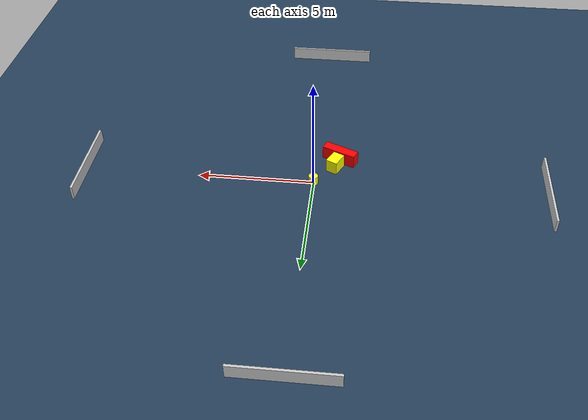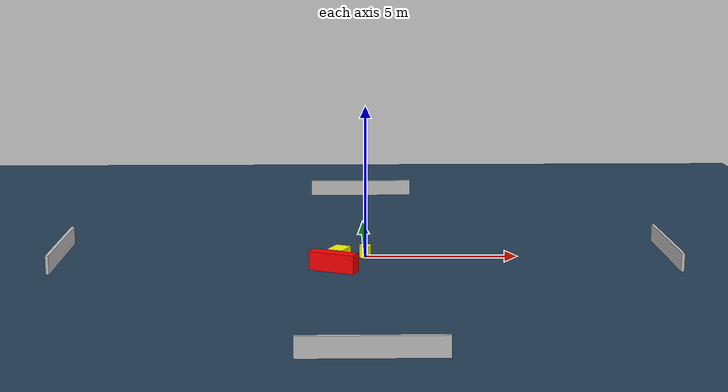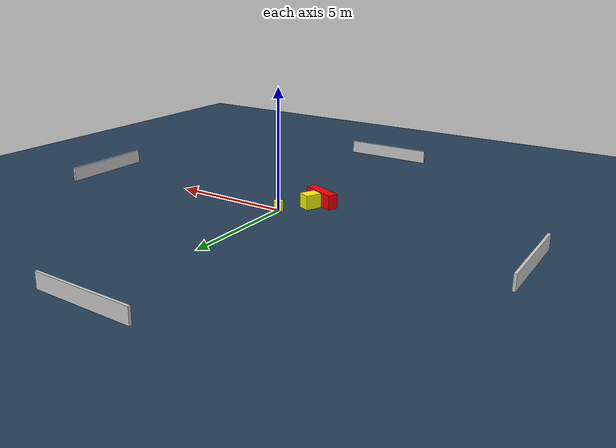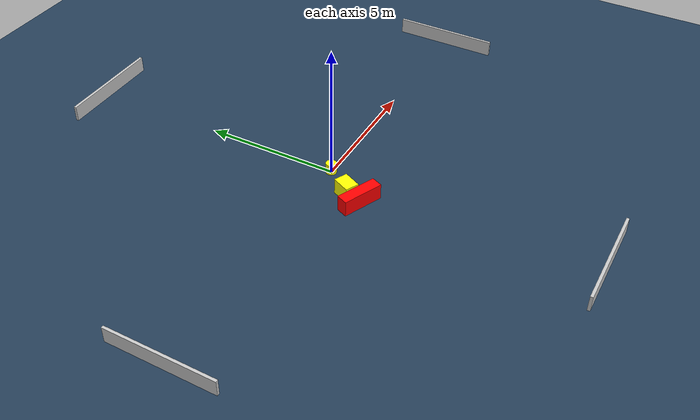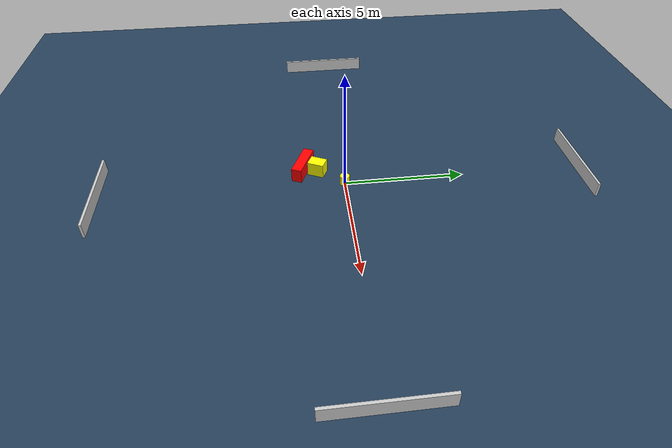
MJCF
<?xml version="1.0" ?>
<mujoco model="generated_environment">
  <option timestep="0.01" integrator="RK4" cone="elliptic"/>
  <default>
    <geom density="1"/>
  </default>
  <asset>
    <texture builtin="gradient" height="3072" name="skybox" rgb1="0.3 0.5 0.7" rgb2="0 0 0" type="skybox" width="512"/>
    <texture builtin="checker" height="300" name="groundplane" rgb1="0.2 0.3 0.4" rgb2="0.1 0.2 0.3" type="2d" width="300"/>
    <material name="groundplane" reflectance="0.2" texrepeat="5 5" texture="groundplane"/>
  </asset>
  <worldbody>
    <light dir="0 0 -1" directional="true" pos="0 0 1.5"/>
    <geom condim="3" friction="0.5 0.005 0.001" material="groundplane" name="floor" pos="0 0 0" size="0 0 0.05" type="plane"/>
    <body name="walls">
      <geom name="wall_1" condim="4" pos="-10.0 0.0 0.3" rgba="0.800000011920929 0.800000011920929 0.800000011920929 1.0" size="0.05 2.0 0.3" type="box"/>
      <geom name="wall_2" condim="4" pos="10.0 0.0 0.3" rgba="0.800000011920929 0.800000011920929 0.800000011920929 1.0" size="0.05 2.0 0.3" type="box"/>
      <geom name="wall_3" condim="4" pos="0.0 -10.0 0.3" rgba="0.800000011920929 0.800000011920929 0.800000011920929 1.0" size="2.0 0.05 0.3" type="box"/>
      <geom name="wall_4" condim="4" pos="0.0 10.0 0.3" rgba="0.800000011920929 0.800000011920929 0.800000011920929 1.0" size="2.0 0.05 0.3" type="box"/>
    </body>
    <body name="robot">
      <joint name="joint_x" type="slide" pos="0 0 0" axis="1 0 0"/>
      <joint name="joint_y" type="slide" pos="0 0 0" axis="0 1 0"/>
      <geom name="robot" type="cylinder" pos="0.0 0.0 0.2" size="0.2 0.2 0.0" mass="5.0" friction="1.0 0.005 0.0001" condim="4" rgba="1.0 1.0 0.0 1.0"/>
    </body>
    <body name="obstacle_1_movable">
      <geom name="obstacle_1_movable" condim="4" pos="-0.8574502585440232 -1.0664508221194664 0.3" euler="0 0 154.3455712487286" friction="0.0 0.005 0.001" rgba="1.0 1.0 0.0 1.0" size="0.2578261083486877 0.34478235724789164 0.3" type="box" mass="0.1"/>
      <joint type="free"/>
    </body>
    <body name="obstacle_2_static">
      <geom name="obstacle_2_static" condim="4" pos="-1.0424978282438522 -1.6701104793761754 0.3" euler="0 0 336.53623446992117" friction="0.0 0.005 0.001" rgba="1.0 0.0 0.0 1.0" size="0.7691615775564418 0.21585490508868996 0.3" type="box"/>
    </body>
  </worldbody>
  <actuator>
    <motor name="actuator_x" joint="joint_x" gear="1" ctrlrange="-1 1"/>
    <motor name="actuator_y" joint="joint_y" gear="1" ctrlrange="-1 1"/>
  </actuator>
</mujoco>
